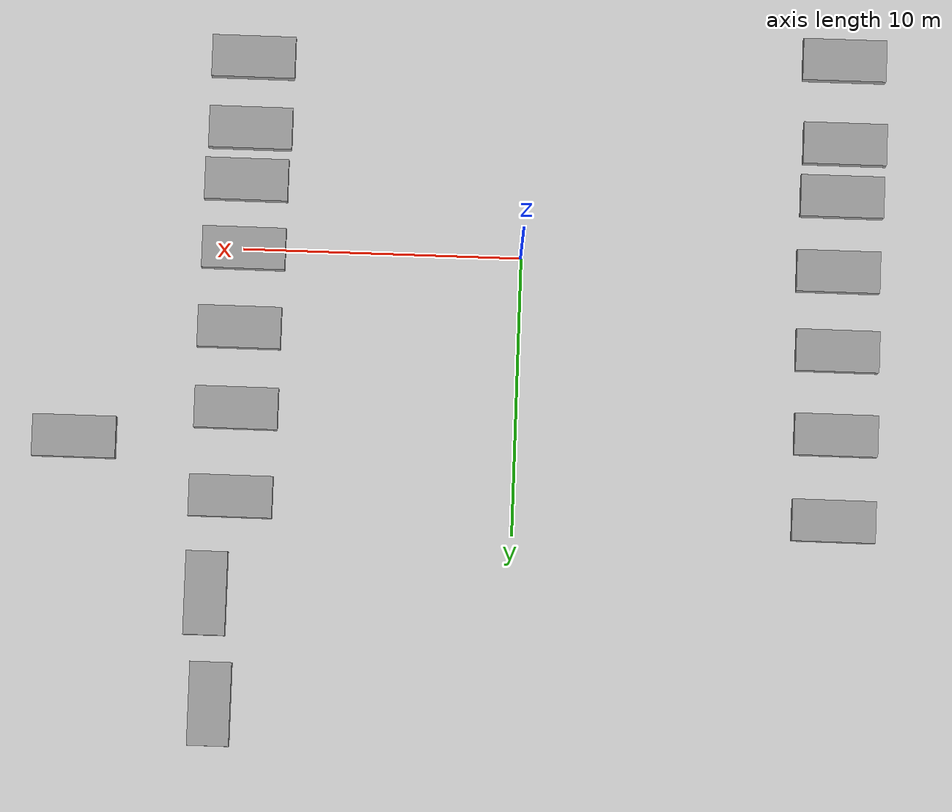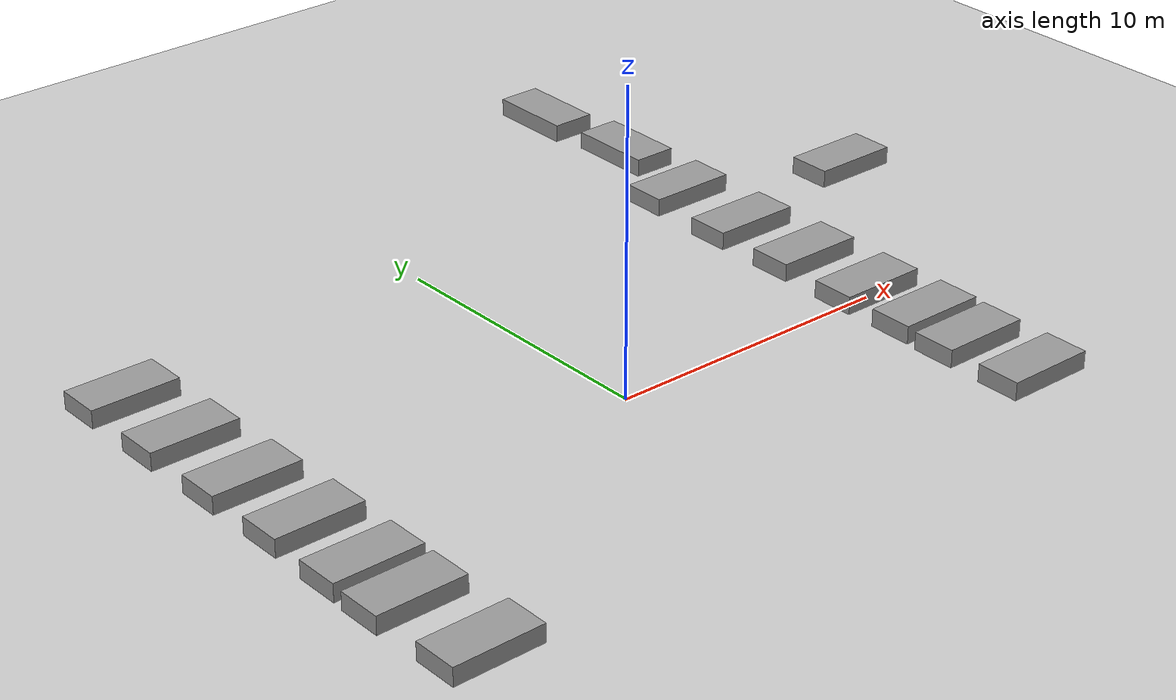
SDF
<sdf version="1.7">
 <world name="default">
  <model name="ground_plane">
   <static>1</static>
   <link name="link">
    <collision name="collision">
     <geometry><plane><normal>0 0 1</normal><size>100 100</size></plane></geometry>
     <surface><friction><ode><mu>100</mu><mu2>50</mu2></ode></friction></surface>
    </collision>
    <visual name="visual">
     <cast_shadows>0</cast_shadows>
     <geometry><plane><normal>0 0 1</normal><size>100 100</size></plane></geometry>
     <material>
      <script><uri>file://media/materials/scripts/gazebo.material</uri><name>Gazebo/Grey</name></script>
     </material>
    </visual>
   </link>
  </model>
  <model name="bed_clone">
   <link name="link_2">
    <inertial>
     <mass>1</mass>
     <inertia>
      <ixx>0.166667</ixx>
      <ixy>0</ixy>
      <ixz>0</ixz>
      <iyy>0.166667</iyy>
      <iyz>0</iyz>
      <izz>0.166667</izz>
     </inertia>
    </inertial>
    <pose>-1.5718 2.2064 0 0 -0 0</pose>
    <visual name="visual">
     <geometry><box><size>3 1.5 0.6</size></box></geometry>
     <material>
      <lighting>1</lighting>
      <script><uri>file://media/materials/scripts/gazebo.material</uri><name>Gazebo/Grey</name></script>
      <shader type="pixel"><normal_map>__default__</normal_map></shader>
      <ambient>0.3 0.3 0.3 1</ambient>
      <diffuse>0.7 0.7 0.7 1</diffuse>
      <specular>0.01 0.01 0.01 1</specular>
      <emissive>0 0 0 1</emissive>
     </material>
    </visual>
    <collision name="collision">
     <geometry><box><size>1 1 1</size></box></geometry>
     <surface>
      <friction>
       <ode><mu>1</mu><mu2>1</mu2><fdir1>0 0 0</fdir1><slip1>0</slip1><slip2>0</slip2></ode>
       <torsional>
        <coefficient>1</coefficient>
        <patch_radius>0</patch_radius>
        <surface_radius>0</surface_radius>
        <use_patch_radius>1</use_patch_radius>
        <ode><slip>0</slip></ode>
       </torsional>
      </friction>
      <bounce><restitution_coefficient>0</restitution_coefficient><threshold>1e+06</threshold></bounce>
      <contact>
       <collide_without_contact>0</collide_without_contact>
       <collide_without_contact_bitmask>1</collide_without_contact_bitmask>
       <collide_bitmask>1</collide_bitmask>
       <ode>
        <soft_cfm>0</soft_cfm>
        <soft_erp>0.2</soft_erp>
        <kp>1e+13</kp>
        <kd>1</kd>
        <max_vel>0.01</max_vel>
        <min_depth>0</min_depth>
       </ode>
       <bullet>
        <split_impulse>1</split_impulse>
        <split_impulse_penetration_threshold>-0.01</split_impulse_penetration_threshold>
        <soft_cfm>0</soft_cfm>
        <soft_erp>0.2</soft_erp>
        <kp>1e+13</kp>
        <kd>1</kd>
       </bullet>
      </contact>
     </surface>
    </collision>
   </link>
   <static>0</static>
   <pose>11.5986 3.57422 0.49998 0 1e-05 0</pose>
  </model>
  <model name="bed_clone_0">
   <link name="link_2">
    <inertial>
     <mass>1</mass>
     <inertia>
      <ixx>0.166667</ixx>
      <ixy>0</ixy>
      <ixz>0</ixz>
      <iyy>0.166667</iyy>
      <iyz>0</iyz>
      <izz>0.166667</izz>
     </inertia>
    </inertial>
    <pose>-1.5718 2.2064 0 0 -0 0</pose>
    <visual name="visual">
     <geometry><box><size>3 1.5 0.6</size></box></geometry>
     <material>
      <lighting>1</lighting>
      <script><uri>file://media/materials/scripts/gazebo.material</uri><name>Gazebo/Grey</name></script>
      <shader type="pixel"><normal_map>__default__</normal_map></shader>
      <ambient>0.3 0.3 0.3 1</ambient>
      <diffuse>0.7 0.7 0.7 1</diffuse>
      <specular>0.01 0.01 0.01 1</specular>
      <emissive>0 0 0 1</emissive>
     </material>
    </visual>
    <collision name="collision">
     <geometry><box><size>1 1 1</size></box></geometry>
     <surface>
      <friction>
       <ode><mu>1</mu><mu2>1</mu2><fdir1>0 0 0</fdir1><slip1>0</slip1><slip2>0</slip2></ode>
       <torsional>
        <coefficient>1</coefficient>
        <patch_radius>0</patch_radius>
        <surface_radius>0</surface_radius>
        <use_patch_radius>1</use_patch_radius>
        <ode><slip>0</slip></ode>
       </torsional>
      </friction>
      <bounce><restitution_coefficient>0</restitution_coefficient><threshold>1e+06</threshold></bounce>
      <contact>
       <collide_without_contact>0</collide_without_contact>
       <collide_without_contact_bitmask>1</collide_without_contact_bitmask>
       <collide_bitmask>1</collide_bitmask>
       <ode>
        <soft_cfm>0</soft_cfm>
        <soft_erp>0.2</soft_erp>
        <kp>1e+13</kp>
        <kd>1</kd>
        <max_vel>0.01</max_vel>
        <min_depth>0</min_depth>
       </ode>
       <bullet>
        <split_impulse>1</split_impulse>
        <split_impulse_penetration_threshold>-0.01</split_impulse_penetration_threshold>
        <soft_cfm>0</soft_cfm>
        <soft_erp>0.2</soft_erp>
        <kp>1e+13</kp>
        <kd>1</kd>
       </bullet>
      </contact>
     </surface>
    </collision>
   </link>
   <static>0</static>
   <pose>11.6001 0.66201 0.499974 1e-05 -0 0</pose>
  </model>
  <model name="bed_clone_1">
   <link name="link_2">
    <inertial>
     <mass>1</mass>
     <inertia>
      <ixx>0.166667</ixx>
      <ixy>0</ixy>
      <ixz>0</ixz>
      <iyy>0.166667</iyy>
      <iyz>0</iyz>
      <izz>0.166667</izz>
     </inertia>
    </inertial>
    <pose>-1.5718 2.2064 0 0 -0 0</pose>
    <visual name="visual">
     <geometry><box><size>3 1.5 0.6</size></box></geometry>
     <material>
      <lighting>1</lighting>
      <script><uri>file://media/materials/scripts/gazebo.material</uri><name>Gazebo/Grey</name></script>
      <shader type="pixel"><normal_map>__default__</normal_map></shader>
      <ambient>0.3 0.3 0.3 1</ambient>
      <diffuse>0.7 0.7 0.7 1</diffuse>
      <specular>0.01 0.01 0.01 1</specular>
      <emissive>0 0 0 1</emissive>
     </material>
    </visual>
    <collision name="collision">
     <geometry><box><size>1 1 1</size></box></geometry>
     <surface>
      <friction>
       <ode><mu>1</mu><mu2>1</mu2><fdir1>0 0 0</fdir1><slip1>0</slip1><slip2>0</slip2></ode>
       <torsional>
        <coefficient>1</coefficient>
        <patch_radius>0</patch_radius>
        <surface_radius>0</surface_radius>
        <use_patch_radius>1</use_patch_radius>
        <ode><slip>0</slip></ode>
       </torsional>
      </friction>
      <bounce><restitution_coefficient>0</restitution_coefficient><threshold>1e+06</threshold></bounce>
      <contact>
       <collide_without_contact>0</collide_without_contact>
       <collide_without_contact_bitmask>1</collide_without_contact_bitmask>
       <collide_bitmask>1</collide_bitmask>
       <ode>
        <soft_cfm>0</soft_cfm>
        <soft_erp>0.2</soft_erp>
        <kp>1e+13</kp>
        <kd>1</kd>
        <max_vel>0.01</max_vel>
        <min_depth>0</min_depth>
       </ode>
       <bullet>
        <split_impulse>1</split_impulse>
        <split_impulse_penetration_threshold>-0.01</split_impulse_penetration_threshold>
        <soft_cfm>0</soft_cfm>
        <soft_erp>0.2</soft_erp>
        <kp>1e+13</kp>
        <kd>1</kd>
       </bullet>
      </contact>
     </surface>
    </collision>
   </link>
   <static>0</static>
   <pose>11.5519 -2.19727 0.499974 1e-05 -0 0</pose>
  </model>
  <model name="bed_clone_2">
   <link name="link_2">
    <inertial>
     <mass>1</mass>
     <inertia>
      <ixx>0.166667</ixx>
      <ixy>0</ixy>
      <ixz>0</ixz>
      <iyy>0.166667</iyy>
      <iyz>0</iyz>
      <izz>0.166667</izz>
     </inertia>
    </inertial>
    <pose>-1.5718 2.2064 0 0 -0 0</pose>
    <visual name="visual">
     <geometry><box><size>3 1.5 0.6</size></box></geometry>
     <material>
      <lighting>1</lighting>
      <script><uri>file://media/materials/scripts/gazebo.material</uri><name>Gazebo/Grey</name></script>
      <shader type="pixel"><normal_map>__default__</normal_map></shader>
      <ambient>0.3 0.3 0.3 1</ambient>
      <diffuse>0.7 0.7 0.7 1</diffuse>
      <specular>0.01 0.01 0.01 1</specular>
      <emissive>0 0 0 1</emissive>
     </material>
    </visual>
    <collision name="collision">
     <geometry><box><size>1 1 1</size></box></geometry>
     <surface>
      <friction>
       <ode><mu>1</mu><mu2>1</mu2><fdir1>0 0 0</fdir1><slip1>0</slip1><slip2>0</slip2></ode>
       <torsional>
        <coefficient>1</coefficient>
        <patch_radius>0</patch_radius>
        <surface_radius>0</surface_radius>
        <use_patch_radius>1</use_patch_radius>
        <ode><slip>0</slip></ode>
       </torsional>
      </friction>
      <bounce><restitution_coefficient>0</restitution_coefficient><threshold>1e+06</threshold></bounce>
      <contact>
       <collide_without_contact>0</collide_without_contact>
       <collide_without_contact_bitmask>1</collide_without_contact_bitmask>
       <collide_bitmask>1</collide_bitmask>
       <ode>
        <soft_cfm>0</soft_cfm>
        <soft_erp>0.2</soft_erp>
        <kp>1e+13</kp>
        <kd>1</kd>
        <max_vel>0.01</max_vel>
        <min_depth>0</min_depth>
       </ode>
       <bullet>
        <split_impulse>1</split_impulse>
        <split_impulse_penetration_threshold>-0.01</split_impulse_penetration_threshold>
        <soft_cfm>0</soft_cfm>
        <soft_erp>0.2</soft_erp>
        <kp>1e+13</kp>
        <kd>1</kd>
       </bullet>
      </contact>
     </surface>
    </collision>
   </link>
   <static>0</static>
   <pose>11.5497 -4.68221 0.499974 1e-05 -0 0</pose>
  </model>
  <model name="bed_1_clone_0_clone">
   <link name="link_2">
    <inertial>
     <mass>1</mass>
     <inertia>
      <ixx>0.166667</ixx>
      <ixy>0</ixy>
      <ixz>0</ixz>
      <iyy>0.166667</iyy>
      <iyz>0</iyz>
      <izz>0.166667</izz>
     </inertia>
    </inertial>
    <pose>-1.5718 2.2064 -0 0 -0 0</pose>
    <visual name="visual">
     <geometry><box><size>3 1.5 0.6</size></box></geometry>
     <material>
      <lighting>1</lighting>
      <script><uri>file://media/materials/scripts/gazebo.material</uri><name>Gazebo/Grey</name></script>
      <shader type="pixel"><normal_map>__default__</normal_map></shader>
      <ambient>0.3 0.3 0.3 1</ambient>
      <diffuse>0.7 0.7 0.7 1</diffuse>
      <specular>0.01 0.01 0.01 1</specular>
      <emissive>0 0 0 1</emissive>
     </material>
    </visual>
    <collision name="collision">
     <geometry><box><size>1 1 1</size></box></geometry>
     <surface>
      <friction>
       <ode><mu>1</mu><mu2>1</mu2><fdir1>0 0 0</fdir1><slip1>0</slip1><slip2>0</slip2></ode>
       <torsional>
        <coefficient>1</coefficient>
        <patch_radius>0</patch_radius>
        <surface_radius>0</surface_radius>
        <use_patch_radius>1</use_patch_radius>
        <ode><slip>0</slip></ode>
       </torsional>
      </friction>
      <bounce><restitution_coefficient>0</restitution_coefficient><threshold>1e+06</threshold></bounce>
      <contact>
       <collide_without_contact>0</collide_without_contact>
       <collide_without_contact_bitmask>1</collide_without_contact_bitmask>
       <collide_bitmask>1</collide_bitmask>
       <ode>
        <soft_cfm>0</soft_cfm>
        <soft_erp>0.2</soft_erp>
        <kp>1e+13</kp>
        <kd>1</kd>
        <max_vel>0.01</max_vel>
        <min_depth>0</min_depth>
       </ode>
       <bullet>
        <split_impulse>1</split_impulse>
        <split_impulse_penetration_threshold>-0.01</split_impulse_penetration_threshold>
        <soft_cfm>0</soft_cfm>
        <soft_erp>0.2</soft_erp>
        <kp>1e+13</kp>
        <kd>1</kd>
       </bullet>
      </contact>
     </surface>
    </collision>
   </link>
   <static>0</static>
   <pose>-9.89961 -4.82603 0.49998 0 1e-05 0.002214</pose>
  </model>
  <model name="bed_1_clone_0_clone_0_clone">
   <link name="link_2">
    <inertial>
     <mass>1</mass>
     <inertia>
      <ixx>0.166667</ixx>
      <ixy>0</ixy>
      <ixz>0</ixz>
      <iyy>0.166667</iyy>
      <iyz>0</iyz>
      <izz>0.166667</izz>
     </inertia>
    </inertial>
    <pose>-1.5718 2.2064 -0 0 -0 0</pose>
    <visual name="visual">
     <geometry><box><size>3 1.5 0.6</size></box></geometry>
     <material>
      <lighting>1</lighting>
      <script><uri>file://media/materials/scripts/gazebo.material</uri><name>Gazebo/Grey</name></script>
      <shader type="pixel"><normal_map>__default__</normal_map></shader>
      <ambient>0.3 0.3 0.3 1</ambient>
      <diffuse>0.7 0.7 0.7 1</diffuse>
      <specular>0.01 0.01 0.01 1</specular>
      <emissive>0 0 0 1</emissive>
     </material>
    </visual>
    <collision name="collision">
     <geometry><box><size>1 1 1</size></box></geometry>
     <surface>
      <friction>
       <ode><mu>1</mu><mu2>1</mu2><fdir1>0 0 0</fdir1><slip1>0</slip1><slip2>0</slip2></ode>
       <torsional>
        <coefficient>1</coefficient>
        <patch_radius>0</patch_radius>
        <surface_radius>0</surface_radius>
        <use_patch_radius>1</use_patch_radius>
        <ode><slip>0</slip></ode>
       </torsional>
      </friction>
      <bounce><restitution_coefficient>0</restitution_coefficient><threshold>1e+06</threshold></bounce>
      <contact>
       <collide_without_contact>0</collide_without_contact>
       <collide_without_contact_bitmask>1</collide_without_contact_bitmask>
       <collide_bitmask>1</collide_bitmask>
       <ode>
        <soft_cfm>0</soft_cfm>
        <soft_erp>0.2</soft_erp>
        <kp>1e+13</kp>
        <kd>1</kd>
        <max_vel>0.01</max_vel>
        <min_depth>0</min_depth>
       </ode>
       <bullet>
        <split_impulse>1</split_impulse>
        <split_impulse_penetration_threshold>-0.01</split_impulse_penetration_threshold>
        <soft_cfm>0</soft_cfm>
        <soft_erp>0.2</soft_erp>
        <kp>1e+13</kp>
        <kd>1</kd>
       </bullet>
      </contact>
     </surface>
    </collision>
   </link>
   <static>0</static>
   <pose>-9.8982 0.75484 0.499974 1e-05 -0 0</pose>
  </model>
  <model name="bed_1_clone_0_clone_0_clone_0">
   <link name="link_2">
    <inertial>
     <mass>1</mass>
     <inertia>
      <ixx>0.166667</ixx>
      <ixy>0</ixy>
      <ixz>0</ixz>
      <iyy>0.166667</iyy>
      <iyz>0</iyz>
      <izz>0.166667</izz>
     </inertia>
    </inertial>
    <pose>-1.5718 2.2064 -0 0 -0 0</pose>
    <visual name="visual">
     <geometry><box><size>3 1.5 0.6</size></box></geometry>
     <material>
      <lighting>1</lighting>
      <script><uri>file://media/materials/scripts/gazebo.material</uri><name>Gazebo/Grey</name></script>
      <shader type="pixel"><normal_map>__default__</normal_map></shader>
      <ambient>0.3 0.3 0.3 1</ambient>
      <diffuse>0.7 0.7 0.7 1</diffuse>
      <specular>0.01 0.01 0.01 1</specular>
      <emissive>0 0 0 1</emissive>
     </material>
    </visual>
    <collision name="collision">
     <geometry><box><size>1 1 1</size></box></geometry>
     <surface>
      <friction>
       <ode><mu>1</mu><mu2>1</mu2><fdir1>0 0 0</fdir1><slip1>0</slip1><slip2>0</slip2></ode>
       <torsional>
        <coefficient>1</coefficient>
        <patch_radius>0</patch_radius>
        <surface_radius>0</surface_radius>
        <use_patch_radius>1</use_patch_radius>
        <ode><slip>0</slip></ode>
       </torsional>
      </friction>
      <bounce><restitution_coefficient>0</restitution_coefficient><threshold>1e+06</threshold></bounce>
      <contact>
       <collide_without_contact>0</collide_without_contact>
       <collide_without_contact_bitmask>1</collide_without_contact_bitmask>
       <collide_bitmask>1</collide_bitmask>
       <ode>
        <soft_cfm>0</soft_cfm>
        <soft_erp>0.2</soft_erp>
        <kp>1e+13</kp>
        <kd>1</kd>
        <max_vel>0.01</max_vel>
        <min_depth>0</min_depth>
       </ode>
       <bullet>
        <split_impulse>1</split_impulse>
        <split_impulse_penetration_threshold>-0.01</split_impulse_penetration_threshold>
        <soft_cfm>0</soft_cfm>
        <soft_erp>0.2</soft_erp>
        <kp>1e+13</kp>
        <kd>1</kd>
       </bullet>
      </contact>
     </surface>
    </collision>
   </link>
   <static>0</static>
   <pose>-9.93629 3.78565 0.49998 0 1e-05 0</pose>
  </model>
  <model name="bed_1_clone_0_clone_0_clone_1">
   <link name="link_2">
    <inertial>
     <mass>1</mass>
     <inertia>
      <ixx>0.166667</ixx>
      <ixy>0</ixy>
      <ixz>0</ixz>
      <iyy>0.166667</iyy>
      <iyz>0</iyz>
      <izz>0.166667</izz>
     </inertia>
    </inertial>
    <pose>-1.5718 2.2064 -0 0 -0 0</pose>
    <visual name="visual">
     <geometry><box><size>3 1.5 0.6</size></box></geometry>
     <material>
      <lighting>1</lighting>
      <script><uri>file://media/materials/scripts/gazebo.material</uri><name>Gazebo/Grey</name></script>
      <shader type="pixel"><normal_map>__default__</normal_map></shader>
      <ambient>0.3 0.3 0.3 1</ambient>
      <diffuse>0.7 0.7 0.7 1</diffuse>
      <specular>0.01 0.01 0.01 1</specular>
      <emissive>0 0 0 1</emissive>
     </material>
    </visual>
    <collision name="collision">
     <geometry><box><size>1 1 1</size></box></geometry>
     <surface>
      <friction>
       <ode><mu>1</mu><mu2>1</mu2><fdir1>0 0 0</fdir1><slip1>0</slip1><slip2>0</slip2></ode>
       <torsional>
        <coefficient>1</coefficient>
        <patch_radius>0</patch_radius>
        <surface_radius>0</surface_radius>
        <use_patch_radius>1</use_patch_radius>
        <ode><slip>0</slip></ode>
       </torsional>
      </friction>
      <bounce><restitution_coefficient>0</restitution_coefficient><threshold>1e+06</threshold></bounce>
      <contact>
       <collide_without_contact>0</collide_without_contact>
       <collide_without_contact_bitmask>1</collide_without_contact_bitmask>
       <collide_bitmask>1</collide_bitmask>
       <ode>
        <soft_cfm>0</soft_cfm>
        <soft_erp>0.2</soft_erp>
        <kp>1e+13</kp>
        <kd>1</kd>
        <max_vel>0.01</max_vel>
        <min_depth>0</min_depth>
       </ode>
       <bullet>
        <split_impulse>1</split_impulse>
        <split_impulse_penetration_threshold>-0.01</split_impulse_penetration_threshold>
        <soft_cfm>0</soft_cfm>
        <soft_erp>0.2</soft_erp>
        <kp>1e+13</kp>
        <kd>1</kd>
       </bullet>
      </contact>
     </surface>
    </collision>
   </link>
   <static>0</static>
   <pose>-9.941 6.87097 0.499974 1e-05 -0 0</pose>
  </model>
  <model name="bed_1_clone_0_clone_clone">
   <link name="link_2">
    <inertial>
     <mass>1</mass>
     <inertia>
      <ixx>0.166667</ixx>
      <ixy>0</ixy>
      <ixz>0</ixz>
      <iyy>0.166667</iyy>
      <iyz>0</iyz>
      <izz>0.166667</izz>
     </inertia>
    </inertial>
    <pose>-1.5718 2.2064 -0 0 -0 0</pose>
    <visual name="visual">
     <geometry><box><size>3 1.5 0.6</size></box></geometry>
     <material>
      <lighting>1</lighting>
      <script><uri>file://media/materials/scripts/gazebo.material</uri><name>Gazebo/Grey</name></script>
      <shader type="pixel"><normal_map>__default__</normal_map></shader>
      <ambient>0.3 0.3 0.3 1</ambient>
      <diffuse>0.7 0.7 0.7 1</diffuse>
      <specular>0.01 0.01 0.01 1</specular>
      <emissive>0 0 0 1</emissive>
     </material>
    </visual>
    <collision name="collision">
     <geometry><box><size>1 1 1</size></box></geometry>
     <surface>
      <friction>
       <ode><mu>1</mu><mu2>1</mu2><fdir1>0 0 0</fdir1><slip1>0</slip1><slip2>0</slip2></ode>
       <torsional>
        <coefficient>1</coefficient>
        <patch_radius>0</patch_radius>
        <surface_radius>0</surface_radius>
        <use_patch_radius>1</use_patch_radius>
        <ode><slip>0</slip></ode>
       </torsional>
      </friction>
      <bounce><restitution_coefficient>0</restitution_coefficient><threshold>1e+06</threshold></bounce>
      <contact>
       <collide_without_contact>0</collide_without_contact>
       <collide_without_contact_bitmask>1</collide_without_contact_bitmask>
       <collide_bitmask>1</collide_bitmask>
       <ode>
        <soft_cfm>0</soft_cfm>
        <soft_erp>0.2</soft_erp>
        <kp>1e+13</kp>
        <kd>1</kd>
        <max_vel>0.01</max_vel>
        <min_depth>0</min_depth>
       </ode>
       <bullet>
        <split_impulse>1</split_impulse>
        <split_impulse_penetration_threshold>-0.01</split_impulse_penetration_threshold>
        <soft_cfm>0</soft_cfm>
        <soft_erp>0.2</soft_erp>
        <kp>1e+13</kp>
        <kd>1</kd>
       </bullet>
      </contact>
     </surface>
    </collision>
   </link>
   <static>0</static>
   <pose>-9.83611 -2.10663 0.49998 0 1e-05 0.002214</pose>
  </model>
  <model name="bed_clone_2_clone">
   <link name="link_2">
    <inertial>
     <mass>1</mass>
     <inertia>
      <ixx>0.166667</ixx>
      <ixy>0</ixy>
      <ixz>0</ixz>
      <iyy>0.166667</iyy>
      <iyz>0</iyz>
      <izz>0.166667</izz>
     </inertia>
    </inertial>
    <pose>-1.5718 2.2064 0 0 -0 0</pose>
    <visual name="visual">
     <geometry><box><size>3 1.5 0.6</size></box></geometry>
     <material>
      <lighting>1</lighting>
      <script><uri>file://media/materials/scripts/gazebo.material</uri><name>Gazebo/Grey</name></script>
      <shader type="pixel"><normal_map>__default__</normal_map></shader>
      <ambient>0.3 0.3 0.3 1</ambient>
      <diffuse>0.7 0.7 0.7 1</diffuse>
      <specular>0.01 0.01 0.01 1</specular>
      <emissive>0 0 0 1</emissive>
     </material>
    </visual>
    <collision name="collision">
     <geometry><box><size>1 1 1</size></box></geometry>
     <surface>
      <friction>
       <ode><mu>1</mu><mu2>1</mu2><fdir1>0 0 0</fdir1><slip1>0</slip1><slip2>0</slip2></ode>
       <torsional>
        <coefficient>1</coefficient>
        <patch_radius>0</patch_radius>
        <surface_radius>0</surface_radius>
        <use_patch_radius>1</use_patch_radius>
        <ode><slip>0</slip></ode>
       </torsional>
      </friction>
      <bounce><restitution_coefficient>0</restitution_coefficient><threshold>1e+06</threshold></bounce>
      <contact>
       <collide_without_contact>0</collide_without_contact>
       <collide_without_contact_bitmask>1</collide_without_contact_bitmask>
       <collide_bitmask>1</collide_bitmask>
       <ode>
        <soft_cfm>0</soft_cfm>
        <soft_erp>0.2</soft_erp>
        <kp>1e+13</kp>
        <kd>1</kd>
        <max_vel>0.01</max_vel>
        <min_depth>0</min_depth>
       </ode>
       <bullet>
        <split_impulse>1</split_impulse>
        <split_impulse_penetration_threshold>-0.01</split_impulse_penetration_threshold>
        <soft_cfm>0</soft_cfm>
        <soft_erp>0.2</soft_erp>
        <kp>1e+13</kp>
        <kd>1</kd>
       </bullet>
      </contact>
     </surface>
    </collision>
   </link>
   <static>0</static>
   <pose>11.4742 -6.55679 0.49998 0 1e-05 0</pose>
  </model>
  <model name="bed_clone_2_clone_0">
   <link name="link_2">
    <inertial>
     <mass>1</mass>
     <inertia>
      <ixx>0.166667</ixx>
      <ixy>0</ixy>
      <ixz>0</ixz>
      <iyy>0.166667</iyy>
      <iyz>0</iyz>
      <izz>0.166667</izz>
     </inertia>
    </inertial>
    <pose>-1.5718 2.2064 0 0 -0 0</pose>
    <visual name="visual">
     <geometry><box><size>3 1.5 0.6</size></box></geometry>
     <material>
      <lighting>1</lighting>
      <script><uri>file://media/materials/scripts/gazebo.material</uri><name>Gazebo/Grey</name></script>
      <shader type="pixel"><normal_map>__default__</normal_map></shader>
      <ambient>0.3 0.3 0.3 1</ambient>
      <diffuse>0.7 0.7 0.7 1</diffuse>
      <specular>0.01 0.01 0.01 1</specular>
      <emissive>0 0 0 1</emissive>
     </material>
    </visual>
    <collision name="collision">
     <geometry><box><size>1 1 1</size></box></geometry>
     <surface>
      <friction>
       <ode><mu>1</mu><mu2>1</mu2><fdir1>0 0 0</fdir1><slip1>0</slip1><slip2>0</slip2></ode>
       <torsional>
        <coefficient>1</coefficient>
        <patch_radius>0</patch_radius>
        <surface_radius>0</surface_radius>
        <use_patch_radius>1</use_patch_radius>
        <ode><slip>0</slip></ode>
       </torsional>
      </friction>
      <bounce><restitution_coefficient>0</restitution_coefficient><threshold>1e+06</threshold></bounce>
      <contact>
       <collide_without_contact>0</collide_without_contact>
       <collide_without_contact_bitmask>1</collide_without_contact_bitmask>
       <collide_bitmask>1</collide_bitmask>
       <ode>
        <soft_cfm>0</soft_cfm>
        <soft_erp>0.2</soft_erp>
        <kp>1e+13</kp>
        <kd>1</kd>
        <max_vel>0.01</max_vel>
        <min_depth>0</min_depth>
       </ode>
       <bullet>
        <split_impulse>1</split_impulse>
        <split_impulse_penetration_threshold>-0.01</split_impulse_penetration_threshold>
        <soft_cfm>0</soft_cfm>
        <soft_erp>0.2</soft_erp>
        <kp>1e+13</kp>
        <kd>1</kd>
       </bullet>
      </contact>
     </surface>
    </collision>
   </link>
   <static>0</static>
   <pose>11.4648 -9.13778 0.499974 1e-05 -0 0</pose>
  </model>
  <model name="bed_1_clone_0_clone_clone_0">
   <link name="link_2">
    <inertial>
     <mass>1</mass>
     <inertia>
      <ixx>0.166667</ixx>
      <ixy>0</ixy>
      <ixz>0</ixz>
      <iyy>0.166667</iyy>
      <iyz>0</iyz>
      <izz>0.166667</izz>
     </inertia>
    </inertial>
    <pose>-1.5718 2.2064 -0 0 -0 0</pose>
    <visual name="visual">
     <geometry><box><size>3 1.5 0.6</size></box></geometry>
     <material>
      <lighting>1</lighting>
      <script><uri>file://media/materials/scripts/gazebo.material</uri><name>Gazebo/Grey</name></script>
      <shader type="pixel"><normal_map>__default__</normal_map></shader>
      <ambient>0.3 0.3 0.3 1</ambient>
      <diffuse>0.7 0.7 0.7 1</diffuse>
      <specular>0.01 0.01 0.01 1</specular>
      <emissive>0 0 0 1</emissive>
     </material>
    </visual>
    <collision name="collision">
     <geometry><box><size>1 1 1</size></box></geometry>
     <surface>
      <friction>
       <ode><mu>1</mu><mu2>1</mu2><fdir1>0 0 0</fdir1><slip1>0</slip1><slip2>0</slip2></ode>
       <torsional>
        <coefficient>1</coefficient>
        <patch_radius>0</patch_radius>
        <surface_radius>0</surface_radius>
        <use_patch_radius>1</use_patch_radius>
        <ode><slip>0</slip></ode>
       </torsional>
      </friction>
      <bounce><restitution_coefficient>0</restitution_coefficient><threshold>1e+06</threshold></bounce>
      <contact>
       <collide_without_contact>0</collide_without_contact>
       <collide_without_contact_bitmask>1</collide_without_contact_bitmask>
       <collide_bitmask>1</collide_bitmask>
       <ode>
        <soft_cfm>0</soft_cfm>
        <soft_erp>0.2</soft_erp>
        <kp>1e+13</kp>
        <kd>1</kd>
        <max_vel>0.01</max_vel>
        <min_depth>0</min_depth>
       </ode>
       <bullet>
        <split_impulse>1</split_impulse>
        <split_impulse_penetration_threshold>-0.01</split_impulse_penetration_threshold>
        <soft_cfm>0</soft_cfm>
        <soft_erp>0.2</soft_erp>
        <kp>1e+13</kp>
        <kd>1</kd>
       </bullet>
      </contact>
     </surface>
    </collision>
   </link>
   <static>0</static>
   <pose>-9.94232 -6.73588 0.499974 1e-05 -0 0.002214</pose>
  </model>
  <model name="bed_1_clone_0_clone_clone_1">
   <link name="link_2">
    <inertial>
     <mass>1</mass>
     <inertia>
      <ixx>0.166667</ixx>
      <ixy>0</ixy>
      <ixz>0</ixz>
      <iyy>0.166667</iyy>
      <iyz>0</iyz>
      <izz>0.166667</izz>
     </inertia>
    </inertial>
    <pose>-1.5718 2.2064 -0 0 -0 0</pose>
    <visual name="visual">
     <geometry><box><size>3 1.5 0.6</size></box></geometry>
     <material>
      <lighting>1</lighting>
      <script><uri>file://media/materials/scripts/gazebo.material</uri><name>Gazebo/Grey</name></script>
      <shader type="pixel"><normal_map>__default__</normal_map></shader>
      <ambient>0.3 0.3 0.3 1</ambient>
      <diffuse>0.7 0.7 0.7 1</diffuse>
      <specular>0.01 0.01 0.01 1</specular>
      <emissive>0 0 0 1</emissive>
     </material>
    </visual>
    <collision name="collision">
     <geometry><box><size>1 1 1</size></box></geometry>
     <surface>
      <friction>
       <ode><mu>1</mu><mu2>1</mu2><fdir1>0 0 0</fdir1><slip1>0</slip1><slip2>0</slip2></ode>
       <torsional>
        <coefficient>1</coefficient>
        <patch_radius>0</patch_radius>
        <surface_radius>0</surface_radius>
        <use_patch_radius>1</use_patch_radius>
        <ode><slip>0</slip></ode>
       </torsional>
      </friction>
      <bounce><restitution_coefficient>0</restitution_coefficient><threshold>1e+06</threshold></bounce>
      <contact>
       <collide_without_contact>0</collide_without_contact>
       <collide_without_contact_bitmask>1</collide_without_contact_bitmask>
       <collide_bitmask>1</collide_bitmask>
       <ode>
        <soft_cfm>0</soft_cfm>
        <soft_erp>0.2</soft_erp>
        <kp>1e+13</kp>
        <kd>1</kd>
        <max_vel>0.01</max_vel>
        <min_depth>0</min_depth>
       </ode>
       <bullet>
        <split_impulse>1</split_impulse>
        <split_impulse_penetration_threshold>-0.01</split_impulse_penetration_threshold>
        <soft_cfm>0</soft_cfm>
        <soft_erp>0.2</soft_erp>
        <kp>1e+13</kp>
        <kd>1</kd>
       </bullet>
      </contact>
     </surface>
    </collision>
   </link>
   <static>0</static>
   <pose>-9.83741 -9.76736 0.49998 0 1e-05 0.002214</pose>
  </model>
  <model name="bed_clone_clone">
   <link name="link_2">
    <inertial>
     <mass>1</mass>
     <inertia>
      <ixx>0.166667</ixx>
      <ixy>0</ixy>
      <ixz>0</ixz>
      <iyy>0.166667</iyy>
      <iyz>0</iyz>
      <izz>0.166667</izz>
     </inertia>
    </inertial>
    <pose>-1.5718 2.2064 0 0 -0 0</pose>
    <visual name="visual">
     <geometry><box><size>3 1.5 0.6</size></box></geometry>
     <material>
      <lighting>1</lighting>
      <script><uri>file://media/materials/scripts/gazebo.material</uri><name>Gazebo/Grey</name></script>
      <shader type="pixel"><normal_map>__default__</normal_map></shader>
      <ambient>0.3 0.3 0.3 1</ambient>
      <diffuse>0.7 0.7 0.7 1</diffuse>
      <specular>0.01 0.01 0.01 1</specular>
      <emissive>0 0 0 1</emissive>
     </material>
    </visual>
    <collision name="collision">
     <geometry><box><size>1 1 1</size></box></geometry>
     <surface>
      <friction>
       <ode><mu>1</mu><mu2>1</mu2><fdir1>0 0 0</fdir1><slip1>0</slip1><slip2>0</slip2></ode>
       <torsional>
        <coefficient>1</coefficient>
        <patch_radius>0</patch_radius>
        <surface_radius>0</surface_radius>
        <use_patch_radius>1</use_patch_radius>
        <ode><slip>0</slip></ode>
       </torsional>
      </friction>
      <bounce><restitution_coefficient>0</restitution_coefficient><threshold>1e+06</threshold></bounce>
      <contact>
       <collide_without_contact>0</collide_without_contact>
       <collide_without_contact_bitmask>1</collide_without_contact_bitmask>
       <collide_bitmask>1</collide_bitmask>
       <ode>
        <soft_cfm>0</soft_cfm>
        <soft_erp>0.2</soft_erp>
        <kp>1e+13</kp>
        <kd>1</kd>
        <max_vel>0.01</max_vel>
        <min_depth>0</min_depth>
       </ode>
       <bullet>
        <split_impulse>1</split_impulse>
        <split_impulse_penetration_threshold>-0.01</split_impulse_penetration_threshold>
        <soft_cfm>0</soft_cfm>
        <soft_erp>0.2</soft_erp>
        <kp>1e+13</kp>
        <kd>1</kd>
       </bullet>
      </contact>
     </surface>
    </collision>
   </link>
   <static>0</static>
   <pose>17.3704 4.80074 0.500017 -1e-05 0 0.001328</pose>
  </model>
  <model name="bed_clone_clone_0">
   <link name="link_2">
    <inertial>
     <mass>1</mass>
     <inertia>
      <ixx>0.166667</ixx>
      <ixy>0</ixy>
      <ixz>0</ixz>
      <iyy>0.166667</iyy>
      <iyz>0</iyz>
      <izz>0.166667</izz>
     </inertia>
    </inertial>
    <pose>-1.5718 2.2064 0 0 -0 0</pose>
    <visual name="visual">
     <geometry><box><size>3 1.5 0.6</size></box></geometry>
     <material>
      <lighting>1</lighting>
      <script><uri>file://media/materials/scripts/gazebo.material</uri><name>Gazebo/Grey</name></script>
      <shader type="pixel"><normal_map>__default__</normal_map></shader>
      <ambient>0.3 0.3 0.3 1</ambient>
      <diffuse>0.7 0.7 0.7 1</diffuse>
      <specular>0.01 0.01 0.01 1</specular>
      <emissive>0 0 0 1</emissive>
     </material>
    </visual>
    <collision name="collision">
     <geometry><box><size>1 1 1</size></box></geometry>
     <surface>
      <friction>
       <ode><mu>1</mu><mu2>1</mu2><fdir1>0 0 0</fdir1><slip1>0</slip1><slip2>0</slip2></ode>
       <torsional>
        <coefficient>1</coefficient>
        <patch_radius>0</patch_radius>
        <surface_radius>0</surface_radius>
        <use_patch_radius>1</use_patch_radius>
        <ode><slip>0</slip></ode>
       </torsional>
      </friction>
      <bounce><restitution_coefficient>0</restitution_coefficient><threshold>1e+06</threshold></bounce>
      <contact>
       <collide_without_contact>0</collide_without_contact>
       <collide_without_contact_bitmask>1</collide_without_contact_bitmask>
       <collide_bitmask>1</collide_bitmask>
       <ode>
        <soft_cfm>0</soft_cfm>
        <soft_erp>0.2</soft_erp>
        <kp>1e+13</kp>
        <kd>1</kd>
        <max_vel>0.01</max_vel>
        <min_depth>0</min_depth>
       </ode>
       <bullet>
        <split_impulse>1</split_impulse>
        <split_impulse_penetration_threshold>-0.01</split_impulse_penetration_threshold>
        <soft_cfm>0</soft_cfm>
        <soft_erp>0.2</soft_erp>
        <kp>1e+13</kp>
        <kd>1</kd>
       </bullet>
      </contact>
     </surface>
    </collision>
   </link>
   <static>0</static>
   <pose>11.6744 6.75209 0.50001 0 -1e-05 0</pose>
  </model>
  <model name="bed_2_clone_1_clone_clone_clone">
   <link name="link_2">
    <inertial>
     <mass>1</mass>
     <inertia>
      <ixx>0.166667</ixx>
      <ixy>0</ixy>
      <ixz>0</ixz>
      <iyy>0.166667</iyy>
      <iyz>0</iyz>
      <izz>0.166667</izz>
     </inertia>
    </inertial>
    <pose>-1.5718 2.2064 -0 0 -0 0</pose>
    <visual name="visual">
     <geometry><box><size>3 1.5 0.6</size></box></geometry>
     <material>
      <lighting>1</lighting>
      <script><uri>file://media/materials/scripts/gazebo.material</uri><name>Gazebo/Grey</name></script>
      <shader type="pixel"><normal_map>__default__</normal_map></shader>
      <ambient>0.3 0.3 0.3 1</ambient>
      <diffuse>0.7 0.7 0.7 1</diffuse>
      <specular>0.01 0.01 0.01 1</specular>
      <emissive>0 0 0 1</emissive>
     </material>
    </visual>
    <collision name="collision">
     <geometry><box><size>1 1 1</size></box></geometry>
     <surface>
      <friction>
       <ode><mu>1</mu><mu2>1</mu2><fdir1>0 0 0</fdir1><slip1>0</slip1><slip2>0</slip2></ode>
       <torsional>
        <coefficient>1</coefficient>
        <patch_radius>0</patch_radius>
        <surface_radius>0</surface_radius>
        <use_patch_radius>1</use_patch_radius>
        <ode><slip>0</slip></ode>
       </torsional>
      </friction>
      <bounce><restitution_coefficient>0</restitution_coefficient><threshold>1e+06</threshold></bounce>
      <contact>
       <collide_without_contact>0</collide_without_contact>
       <collide_without_contact_bitmask>1</collide_without_contact_bitmask>
       <collide_bitmask>1</collide_bitmask>
       <ode>
        <soft_cfm>0</soft_cfm>
        <soft_erp>0.2</soft_erp>
        <kp>1e+13</kp>
        <kd>1</kd>
        <max_vel>0.01</max_vel>
        <min_depth>0</min_depth>
       </ode>
       <bullet>
        <split_impulse>1</split_impulse>
        <split_impulse_penetration_threshold>-0.01</split_impulse_penetration_threshold>
        <soft_cfm>0</soft_cfm>
        <soft_erp>0.2</soft_erp>
        <kp>1e+13</kp>
        <kd>1</kd>
       </bullet>
      </contact>
     </surface>
    </collision>
   </link>
   <static>0</static>
   <pose>8.6535 10.8888 0.49998 0 1e-05 -1.57112</pose>
  </model>
  <model name="bed_2_clone_1_clone_clone_clone_clone">
   <link name="link_2">
    <inertial>
     <mass>1</mass>
     <inertia>
      <ixx>0.166667</ixx>
      <ixy>0</ixy>
      <ixz>0</ixz>
      <iyy>0.166667</iyy>
      <iyz>0</iyz>
      <izz>0.166667</izz>
     </inertia>
    </inertial>
    <pose>-1.5718 2.2064 -0 0 -0 0</pose>
    <visual name="visual">
     <geometry><box><size>3 1.5 0.6</size></box></geometry>
     <material>
      <lighting>1</lighting>
      <script><uri>file://media/materials/scripts/gazebo.material</uri><name>Gazebo/Grey</name></script>
      <shader type="pixel"><normal_map>__default__</normal_map></shader>
      <ambient>0.3 0.3 0.3 1</ambient>
      <diffuse>0.7 0.7 0.7 1</diffuse>
      <specular>0.01 0.01 0.01 1</specular>
      <emissive>0 0 0 1</emissive>
     </material>
    </visual>
    <collision name="collision">
     <geometry><box><size>1 1 1</size></box></geometry>
     <surface>
      <friction>
       <ode><mu>1</mu><mu2>1</mu2><fdir1>0 0 0</fdir1><slip1>0</slip1><slip2>0</slip2></ode>
       <torsional>
        <coefficient>1</coefficient>
        <patch_radius>0</patch_radius>
        <surface_radius>0</surface_radius>
        <use_patch_radius>1</use_patch_radius>
        <ode><slip>0</slip></ode>
       </torsional>
      </friction>
      <bounce><restitution_coefficient>0</restitution_coefficient><threshold>1e+06</threshold></bounce>
      <contact>
       <collide_without_contact>0</collide_without_contact>
       <collide_without_contact_bitmask>1</collide_without_contact_bitmask>
       <collide_bitmask>1</collide_bitmask>
       <ode>
        <soft_cfm>0</soft_cfm>
        <soft_erp>0.2</soft_erp>
        <kp>1e+13</kp>
        <kd>1</kd>
        <max_vel>0.01</max_vel>
        <min_depth>0</min_depth>
       </ode>
       <bullet>
        <split_impulse>1</split_impulse>
        <split_impulse_penetration_threshold>-0.01</split_impulse_penetration_threshold>
        <soft_cfm>0</soft_cfm>
        <soft_erp>0.2</soft_erp>
        <kp>1e+13</kp>
        <kd>1</kd>
       </bullet>
      </contact>
     </surface>
    </collision>
   </link>
   <static>0</static>
   <pose>8.35682 14.8375 0.500017 -1e-05 0 -1.57112</pose>
  </model>
 </world>
</sdf>
